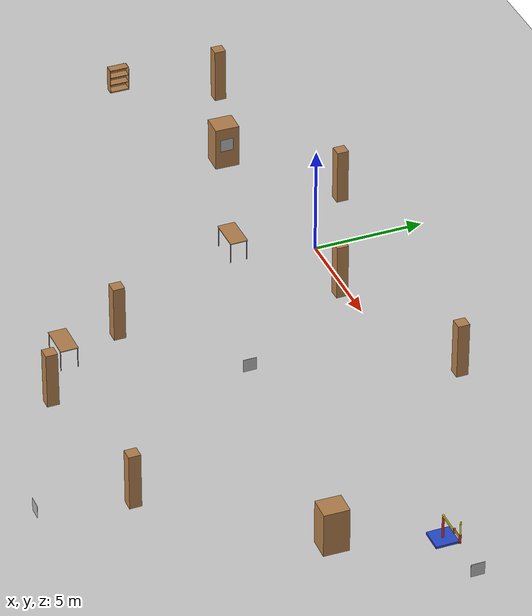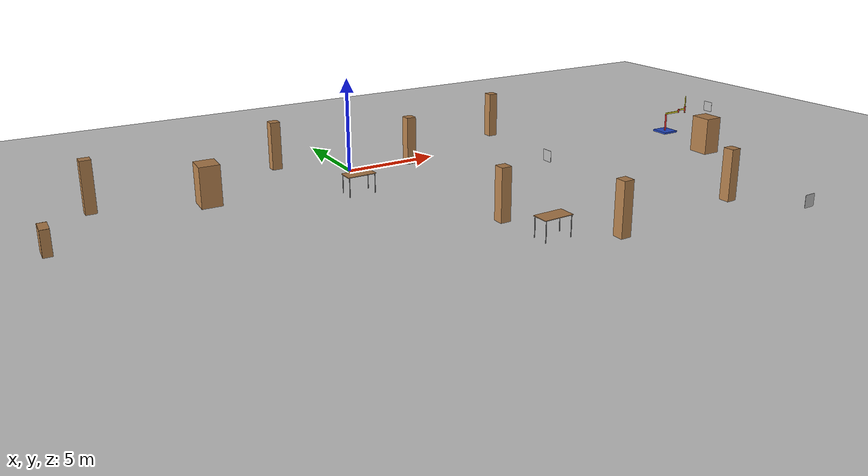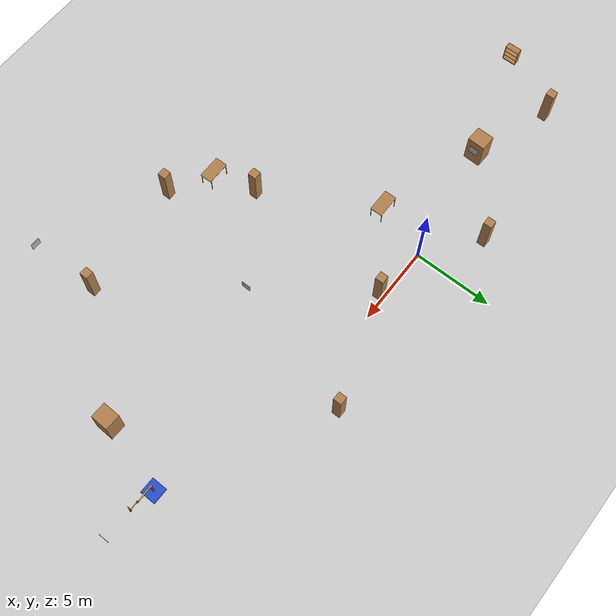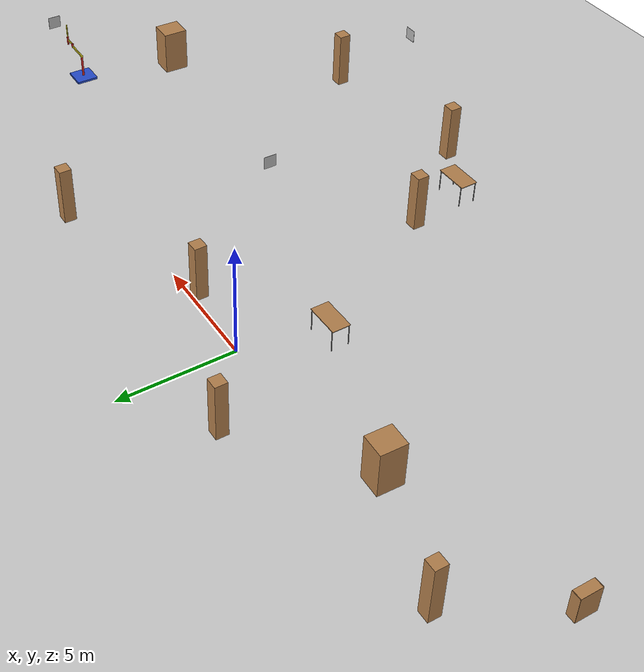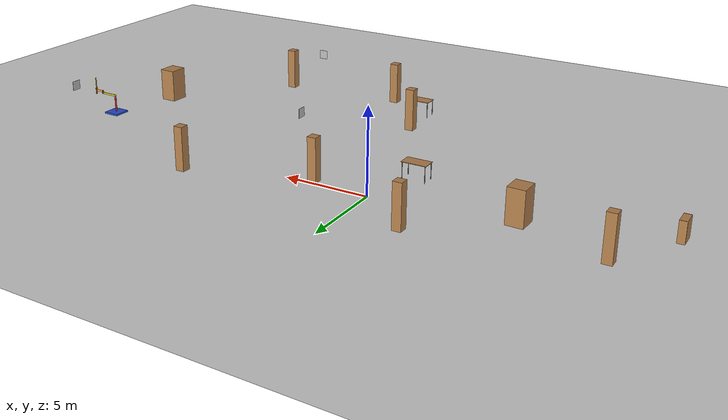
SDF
<sdf version="1.7">
 <world name="default">
  <model name="ground_plane">
   <static>1</static>
   <link name="link">
    <collision name="collision">
     <geometry><plane><normal>0 0 1</normal><size>25 25</size></plane></geometry>
     <surface><friction><ode><mu>100</mu><mu2>50</mu2></ode></friction></surface>
    </collision>
    <visual name="visual">
     <cast_shadows>0</cast_shadows>
     <geometry><plane><normal>0 0 1</normal><size>25 25</size></plane></geometry>
     <material>
      <script><uri>file://media/materials/scripts/gazebo.material</uri><name>Gazebo/Grey</name></script>
     </material>
    </visual>
   </link>
   <link name="startflag">
    <pose>0 0 0.115 0 -0 0</pose>
    <inertial>
     <mass>0.39</mass>
     <inertia><ixx>0.00058</ixx><ixy>0</ixy><ixz>0</ixz><iyy>0.00058</iyy><iyz>0</iyz><izz>0.00019</izz></inertia>
    </inertial>
    <collision name="collision"><geometry><box><size>1 1 0.01</size></box></geometry></collision>
    <visual name="visual">
     <geometry><box><size>1 1 0.01</size></box></geometry>
     <material>
      <script>
       <uri>model://apriltag/materials/scripts</uri>
       <uri>model://apriltag/materials/textures</uri>
       <name>startflag/Diffuse</name>
      </script>
     </material>
    </visual>
   </link>
  </model>
  <model name="unit_box">
   <pose>-7.8066 -1.17549 1.01795 -4e-06 -2e-06 -0.028962</pose>
   <link name="link">
    <inertial>
     <mass>1</mass>
     <inertia>
      <ixx>0.166667</ixx>
      <ixy>0</ixy>
      <ixz>0</ixz>
      <iyy>0.166667</iyy>
      <iyz>0</iyz>
      <izz>0.166667</izz>
     </inertia>
    </inertial>
    <collision name="collision"><geometry><box><size>1 1.11313 2.03591</size></box></geometry></collision>
    <visual name="visual">
     <geometry><box><size>1 1.11313 2.03591</size></box></geometry>
     <material>
      <script><uri>file://media/materials/scripts/gazebo.material</uri><name>Gazebo/Wood</name></script>
     </material>
    </visual>
   </link>
   <static>0</static>
  </model>
  <model name="table">
   <static>0</static>
   <link name="link">
    <collision name="surface">
     <pose>0 0 1 0 -0 0</pose>
     <geometry><box><size>1.5 0.8 0.03</size></box></geometry>
     <surface><friction><ode><mu>0.6</mu><mu2>0.6</mu2></ode></friction></surface>
    </collision>
    <visual name="visual1">
     <pose>0 0 1 0 -0 0</pose>
     <geometry><box><size>1.5 0.8 0.03</size></box></geometry>
     <material>
      <script><uri>file://media/materials/scripts/gazebo.material</uri><name>Gazebo/Wood</name></script>
     </material>
    </visual>
    <collision name="front_left_leg">
     <pose>0.68 0.38 0.5 0 -0 0</pose>
     <geometry><cylinder><radius>0.02</radius><length>1</length></cylinder></geometry>
    </collision>
    <visual name="front_left_leg">
     <pose>0.68 0.38 0.5 0 -0 0</pose>
     <geometry><cylinder><radius>0.02</radius><length>1</length></cylinder></geometry>
     <material>
      <script><uri>file://media/materials/scripts/gazebo.material</uri><name>Gazebo/Grey</name></script>
     </material>
    </visual>
    <collision name="front_right_leg">
     <pose>0.68 -0.38 0.5 0 -0 0</pose>
     <geometry><cylinder><radius>0.02</radius><length>1</length></cylinder></geometry>
    </collision>
    <visual name="front_right_leg">
     <pose>0.68 -0.38 0.5 0 -0 0</pose>
     <geometry><cylinder><radius>0.02</radius><length>1</length></cylinder></geometry>
     <material>
      <script><uri>file://media/materials/scripts/gazebo.material</uri><name>Gazebo/Grey</name></script>
     </material>
    </visual>
    <collision name="back_right_leg">
     <pose>-0.68 -0.38 0.5 0 -0 0</pose>
     <geometry><cylinder><radius>0.02</radius><length>1</length></cylinder></geometry>
    </collision>
    <visual name="back_right_leg">
     <pose>-0.68 -0.38 0.5 0 -0 0</pose>
     <geometry><cylinder><radius>0.02</radius><length>1</length></cylinder></geometry>
     <material>
      <script><uri>file://media/materials/scripts/gazebo.material</uri><name>Gazebo/Grey</name></script>
     </material>
    </visual>
    <collision name="back_left_leg">
     <pose>-0.68 0.38 0.5 0 -0 0</pose>
     <geometry><cylinder><radius>0.02</radius><length>1</length></cylinder></geometry>
    </collision>
    <visual name="back_left_leg">
     <pose>-0.68 0.38 0.5 0 -0 0</pose>
     <geometry><cylinder><radius>0.02</radius><length>1</length></cylinder></geometry>
     <material>
      <script><uri>file://media/materials/scripts/gazebo.material</uri><name>Gazebo/Grey</name></script>
     </material>
    </visual>
    <inertial>
     <inertia><ixx>1</ixx><ixy>0</ixy><ixz>0</ixz><iyy>1</iyy><iyz>0</iyz><izz>1</izz></inertia>
     <mass>1</mass>
    </inertial>
   </link>
   <pose>-1.08828 -3.4353 -4e-06 2e-06 4e-06 0.010207</pose>
  </model>
  <model name="unit_box_0">
   <pose>-3.15496 2.50233 1.29125 1e-06 -0 0.000158</pose>
   <link name="link">
    <inertial>
     <mass>1</mass>
     <inertia>
      <ixx>0.166667</ixx>
      <ixy>0</ixy>
      <ixz>0</ixz>
      <iyy>0.166667</iyy>
      <iyz>0</iyz>
      <izz>0.166667</izz>
     </inertia>
    </inertial>
    <collision name="collision"><geometry><box><size>0.52404 0.528613 2.5825</size></box></geometry></collision>
    <visual name="visual">
     <geometry><box><size>0.52404 0.528613 2.5825</size></box></geometry>
     <material>
      <script><uri>file://media/materials/scripts/gazebo.material</uri><name>Gazebo/Wood</name></script>
     </material>
    </visual>
   </link>
   <static>0</static>
  </model>
  <model name="unit_box_0_clone">
   <pose>3.461 -0.330305 1.29125 -1e-06 -1e-06 0.014472</pose>
   <link name="link">
    <inertial>
     <mass>1</mass>
     <inertia>
      <ixx>0.166667</ixx>
      <ixy>0</ixy>
      <ixz>0</ixz>
      <iyy>0.166667</iyy>
      <iyz>0</iyz>
      <izz>0.166667</izz>
     </inertia>
    </inertial>
    <collision name="collision"><geometry><box><size>0.52404 0.528614 2.5825</size></box></geometry></collision>
    <visual name="visual">
     <geometry><box><size>0.52404 0.528614 2.5825</size></box></geometry>
     <material>
      <script><uri>file://media/materials/scripts/gazebo.material</uri><name>Gazebo/Wood</name></script>
     </material>
    </visual>
   </link>
   <static>0</static>
  </model>
  <model name="unit_box_0_clone_2">
   <pose>-12.7876 0.55243 1.29125 -1e-06 -1e-06 -0.001522</pose>
   <link name="link">
    <inertial>
     <mass>1</mass>
     <inertia>
      <ixx>0.166667</ixx>
      <ixy>0</ixy>
      <ixz>0</ixz>
      <iyy>0.166667</iyy>
      <iyz>0</iyz>
      <izz>0.166667</izz>
     </inertia>
    </inertial>
    <collision name="collision"><geometry><box><size>0.52404 0.528614 2.5825</size></box></geometry></collision>
    <visual name="visual">
     <geometry><box><size>0.52404 0.528614 2.5825</size></box></geometry>
     <material>
      <script><uri>file://media/materials/scripts/gazebo.material</uri><name>Gazebo/Wood</name></script>
     </material>
    </visual>
   </link>
   <static>0</static>
  </model>
  <model name="unit_box_0_clone_3">
   <pose>10.4918 2.09211 1.29125 1e-06 1e-06 -0.00089</pose>
   <link name="link">
    <inertial>
     <mass>1</mass>
     <inertia>
      <ixx>0.166667</ixx>
      <ixy>0</ixy>
      <ixz>0</ixz>
      <iyy>0.166667</iyy>
      <iyz>0</iyz>
      <izz>0.166667</izz>
     </inertia>
    </inertial>
    <collision name="collision"><geometry><box><size>0.52404 0.528614 2.5825</size></box></geometry></collision>
    <visual name="visual">
     <geometry><box><size>0.52404 0.528614 2.5825</size></box></geometry>
     <material>
      <script><uri>file://media/materials/scripts/gazebo.material</uri><name>Gazebo/Wood</name></script>
     </material>
    </visual>
   </link>
   <static>0</static>
  </model>
  <model name="static_apriltag_0">
   <link name="link">
    <pose>0 0 0 0 1.57 0</pose>
    <inertial>
     <mass>0.39</mass>
     <inertia><ixx>0.00058</ixx><ixy>0</ixy><ixz>0</ixz><iyy>0.00058</iyy><iyz>0</iyz><izz>0.00019</izz></inertia>
    </inertial>
    <collision name="collision"><geometry><box><size>0.6 0.6 0.01</size></box></geometry></collision>
    <visual name="visual">
     <geometry><box><size>0.6 0.6 0.01</size></box></geometry>
     <material>
      <script>
       <uri>model://apriltag/materials/scripts</uri>
       <uri>model://apriltag/materials/textures</uri>
       <name>apriltag/Diffuse0</name>
      </script>
     </material>
    </visual>
    <gravity>0</gravity>
   </link>
   <pose>8.19379 -6.38226 1.2 0 -0 0</pose>
   <static>0</static>
   <pose>1.90787 0.108649 0 0 -0 0</pose>
  </model>
  <model name="static_apriltag_2">
   <link name="link">
    <pose>0 0 0 0 1.57 0</pose>
    <inertial>
     <mass>0.39</mass>
     <inertia><ixx>0.00058</ixx><ixy>0</ixy><ixz>0</ixz><iyy>0.00058</iyy><iyz>0</iyz><izz>0.00019</izz></inertia>
    </inertial>
    <collision name="collision"><geometry><box><size>0.6 0.6 0.01</size></box></geometry></collision>
    <visual name="visual">
     <geometry><box><size>0.6 0.6 0.01</size></box></geometry>
     <material>
      <script>
       <uri>model://apriltag/materials/scripts</uri>
       <uri>model://apriltag/materials/textures</uri>
       <name>apriltag/Diffuse2</name>
      </script>
     </material>
    </visual>
    <gravity>0</gravity>
   </link>
   <pose>23.686 -3.18053 1.2 0 -0 0</pose>
   <static>0</static>
   <pose>0.80811 0.829943 0 0 -0 0</pose>
  </model>
  <model name="static_apriltag_5">
   <link name="link">
    <pose>0 0 0 -1.57 1.57 -0</pose>
    <inertial>
     <mass>0.39</mass>
     <inertia><ixx>0.00058</ixx><ixy>0</ixy><ixz>0</ixz><iyy>0.00058</iyy><iyz>0</iyz><izz>0.00019</izz></inertia>
    </inertial>
    <collision name="collision"><geometry><box><size>0.6 0.6 0.01</size></box></geometry></collision>
    <visual name="visual">
     <geometry><box><size>0.6 0.6 0.01</size></box></geometry>
     <material>
      <script>
       <uri>model://apriltag/materials/scripts</uri>
       <uri>model://apriltag/materials/textures</uri>
       <name>apriltag/Diffuse5</name>
      </script>
     </material>
    </visual>
    <gravity>0</gravity>
   </link>
   <pose>13.7196 -17.7351 1.2 0 -0 0</pose>
   <static>0</static>
   <pose>5.04082 3.71574 0 0 -0 0</pose>
  </model>
  <model name="static_apriltag_7">
   <link name="link">
    <pose>0 0 0 0 1.57 0</pose>
    <inertial>
     <mass>0.39</mass>
     <inertia><ixx>0.00058</ixx><ixy>0</ixy><ixz>0</ixz><iyy>0.00058</iyy><iyz>0</iyz><izz>0.00019</izz></inertia>
    </inertial>
    <collision name="collision"><geometry><box><size>0.6 0.6 0.01</size></box></geometry></collision>
    <visual name="visual">
     <geometry><box><size>0.6 0.6 0.01</size></box></geometry>
     <material>
      <script>
       <uri>model://apriltag/materials/scripts</uri>
       <uri>model://apriltag/materials/textures</uri>
       <name>apriltag/Diffuse7</name>
      </script>
     </material>
    </visual>
    <gravity>0</gravity>
   </link>
   <pose>-7.28565 -1.22371 1.2 0 -0 0</pose>
   <static>0</static>
   <pose>3.12393 4.47604 0 0 -0 0</pose>
  </model>
  <model name="bookshelf">
   <static>1</static>
   <link name="link">
    <inertial><mass>1</mass></inertial>
    <collision name="back">
     <pose>0 0.005 0.6 0 -0 0</pose>
     <geometry><box><size>0.9 0.01 1.2</size></box></geometry>
    </collision>
    <visual name="visual1">
     <pose>0 0.005 0.6 0 -0 0</pose>
     <geometry><box><size>0.9 0.01 1.2</size></box></geometry>
     <material>
      <script><uri>file://media/materials/scripts/gazebo.material</uri><name>Gazebo/Wood</name></script>
     </material>
    </visual>
    <collision name="left_side">
     <pose>0.45 -0.195 0.6 0 -0 0</pose>
     <geometry><box><size>0.02 0.4 1.2</size></box></geometry>
    </collision>
    <visual name="visual2">
     <pose>0.45 -0.195 0.6 0 -0 0</pose>
     <geometry><box><size>0.02 0.4 1.2</size></box></geometry>
     <material>
      <script><uri>file://media/materials/scripts/gazebo.material</uri><name>Gazebo/Wood</name></script>
     </material>
    </visual>
    <collision name="right_side">
     <pose>-0.45 -0.195 0.6 0 -0 0</pose>
     <geometry><box><size>0.02 0.4 1.2</size></box></geometry>
    </collision>
    <visual name="visual3">
     <pose>-0.45 -0.195 0.6 0 -0 0</pose>
     <geometry><box><size>0.02 0.4 1.2</size></box></geometry>
     <material>
      <script><uri>file://media/materials/scripts/gazebo.material</uri><name>Gazebo/Wood</name></script>
     </material>
    </visual>
    <collision name="bottom">
     <pose>0 -0.195 0.03 0 -0 0</pose>
     <geometry><box><size>0.88 0.4 0.06</size></box></geometry>
    </collision>
    <visual name="visual4">
     <pose>0 -0.195 0.03 0 -0 0</pose>
     <geometry><box><size>0.88 0.4 0.06</size></box></geometry>
     <material>
      <script><uri>file://media/materials/scripts/gazebo.material</uri><name>Gazebo/Wood</name></script>
     </material>
    </visual>
    <collision name="top">
     <pose>0 -0.195 1.19 0 -0 0</pose>
     <geometry><box><size>0.88 0.4 0.02</size></box></geometry>
    </collision>
    <visual name="visual5">
     <pose>0 -0.195 1.19 0 -0 0</pose>
     <geometry><box><size>0.88 0.4 0.02</size></box></geometry>
     <material>
      <script><uri>file://media/materials/scripts/gazebo.material</uri><name>Gazebo/Wood</name></script>
     </material>
    </visual>
    <collision name="low_shelf">
     <pose>0 -0.195 0.43 0 -0 0</pose>
     <geometry><box><size>0.88 0.4 0.02</size></box></geometry>
    </collision>
    <visual name="visual6">
     <pose>0 -0.195 0.43 0 -0 0</pose>
     <geometry><box><size>0.88 0.4 0.02</size></box></geometry>
     <material>
      <script><uri>file://media/materials/scripts/gazebo.material</uri><name>Gazebo/Wood</name></script>
     </material>
    </visual>
    <collision name="high_shelf">
     <pose>0 -0.195 0.8 0 -0 0</pose>
     <geometry><box><size>0.88 0.4 0.02</size></box></geometry>
    </collision>
    <visual name="visual7">
     <pose>0 -0.195 0.8 0 -0 0</pose>
     <geometry><box><size>0.88 0.4 0.02</size></box></geometry>
     <material>
      <script><uri>file://media/materials/scripts/gazebo.material</uri><name>Gazebo/Wood</name></script>
     </material>
    </visual>
   </link>
   <pose>-15.3069 -3.46598 0 0 -0 1.57</pose>
  </model>
  <model name="unit_box_clone_clone">
   <pose>18.9255 -7.25794 1.01795 1e-06 1e-06 -0.028953</pose>
   <link name="link">
    <inertial>
     <mass>1</mass>
     <inertia>
      <ixx>0.166667</ixx>
      <ixy>0</ixy>
      <ixz>0</ixz>
      <iyy>0.166667</iyy>
      <iyz>0</iyz>
      <izz>0.166667</izz>
     </inertia>
    </inertial>
    <collision name="collision"><geometry><box><size>1 1.11313 2.03591</size></box></geometry></collision>
    <visual name="visual">
     <geometry><box><size>1 1.11313 2.03591</size></box></geometry>
     <material>
      <script><uri>file://media/materials/scripts/gazebo.material</uri><name>Gazebo/Wood</name></script>
     </material>
    </visual>
   </link>
   <static>0</static>
  </model>
  <model name="unit_box_0_clone_0_clone">
   <pose>2.73742 -10.1714 1.29125 -1e-06 -1e-06 0.001785</pose>
   <link name="link">
    <inertial>
     <mass>1</mass>
     <inertia>
      <ixx>0.166667</ixx>
      <ixy>0</ixy>
      <ixz>0</ixz>
      <iyy>0.166667</iyy>
      <iyz>0</iyz>
      <izz>0.166667</izz>
     </inertia>
    </inertial>
    <collision name="collision"><geometry><box><size>0.52404 0.528614 2.5825</size></box></geometry></collision>
    <visual name="visual">
     <geometry><box><size>0.52404 0.528614 2.5825</size></box></geometry>
     <material>
      <script><uri>file://media/materials/scripts/gazebo.material</uri><name>Gazebo/Wood</name></script>
     </material>
    </visual>
   </link>
   <static>0</static>
  </model>
  <model name="unit_box_0_clone_0_clone_0">
   <pose>6.02235 -14.3271 1.29125 -1e-06 -1e-06 3.4e-05</pose>
   <link name="link">
    <inertial>
     <mass>1</mass>
     <inertia>
      <ixx>0.166667</ixx>
      <ixy>0</ixy>
      <ixz>0</ixz>
      <iyy>0.166667</iyy>
      <iyz>0</iyz>
      <izz>0.166667</izz>
     </inertia>
    </inertial>
    <collision name="collision"><geometry><box><size>0.52404 0.528614 2.5825</size></box></geometry></collision>
    <visual name="visual">
     <geometry><box><size>0.52404 0.528614 2.5825</size></box></geometry>
     <material>
      <script><uri>file://media/materials/scripts/gazebo.material</uri><name>Gazebo/Wood</name></script>
     </material>
    </visual>
   </link>
   <static>0</static>
  </model>
  <model name="unit_box_0_clone_0_clone_1">
   <pose>13.5266 -13.549 1.29125 1e-06 1e-06 0.000707</pose>
   <link name="link">
    <inertial>
     <mass>1</mass>
     <inertia>
      <ixx>0.166667</ixx>
      <ixy>0</ixy>
      <ixz>0</ixz>
      <iyy>0.166667</iyy>
      <iyz>0</iyz>
      <izz>0.166667</izz>
     </inertia>
    </inertial>
    <collision name="collision"><geometry><box><size>0.52404 0.528614 2.5825</size></box></geometry></collision>
    <visual name="visual">
     <geometry><box><size>0.52404 0.528614 2.5825</size></box></geometry>
     <material>
      <script><uri>file://media/materials/scripts/gazebo.material</uri><name>Gazebo/Wood</name></script>
     </material>
    </visual>
   </link>
   <static>0</static>
  </model>
  <model name="simple_arm_clone_0">
   <link name="arm_base">
    <inertial>
     <pose>0 0 0.00099 0 -0 0</pose>
     <inertia><ixx>1.11</ixx><ixy>0</ixy><ixz>0</ixz><iyy>100.11</iyy><iyz>0</iyz><izz>1.01</izz></inertia>
     <mass>101</mass>
    </inertial>
    <collision name="arm_base_geom">
     <pose>0 0 0.05 0 -0 0</pose>
     <geometry><box><size>1 1 0.1</size></box></geometry>
    </collision>
    <visual name="arm_base_geom_visual">
     <pose>0 0 0.05 0 -0 0</pose>
     <geometry><box><size>1 1 0.1</size></box></geometry>
     <material>
      <script><uri>file://media/materials/scripts/gazebo.material</uri><name>Gazebo/Blue</name></script>
     </material>
    </visual>
    <collision name="arm_base_geom_arm_trunk">
     <pose>0 0 0.6 0 -0 0</pose>
     <geometry><cylinder><radius>0.05</radius><length>1</length></cylinder></geometry>
    </collision>
    <visual name="arm_base_geom_arm_trunk_visual">
     <pose>0 0 0.6 0 -0 0</pose>
     <geometry><cylinder><radius>0.05</radius><length>1</length></cylinder></geometry>
     <material>
      <script><uri>file://media/materials/scripts/gazebo.material</uri><name>Gazebo/Red</name></script>
     </material>
    </visual>
   </link>
   <link name="arm_shoulder_pan">
    <pose>0 0 1.1 0 -0 0</pose>
    <inertial>
     <pose>0.045455 0 0 0 -0 0</pose>
     <inertia><ixx>0.011</ixx><ixy>0</ixy><ixz>0</ixz><iyy>0.0225</iyy><iyz>0</iyz><izz>0.0135</izz></inertia>
     <mass>1.1</mass>
    </inertial>
    <collision name="arm_shoulder_pan_geom">
     <pose>0 0 0.05 0 -0 0</pose>
     <geometry><cylinder><radius>0.05</radius><length>0.1</length></cylinder></geometry>
    </collision>
    <visual name="arm_shoulder_pan_geom_visual">
     <pose>0 0 0.05 0 -0 0</pose>
     <geometry><cylinder><radius>0.05</radius><length>0.1</length></cylinder></geometry>
     <material>
      <script><uri>file://media/materials/scripts/gazebo.material</uri><name>Gazebo/Yellow</name></script>
     </material>
    </visual>
    <collision name="arm_shoulder_pan_geom_arm_shoulder">
     <pose>0.55 0 0.05 0 -0 0</pose>
     <geometry><box><size>1 0.05 0.1</size></box></geometry>
    </collision>
    <visual name="arm_shoulder_pan_geom_arm_shoulder_visual">
     <pose>0.55 0 0.05 0 -0 0</pose>
     <geometry><box><size>1 0.05 0.1</size></box></geometry>
     <material>
      <script><uri>file://media/materials/scripts/gazebo.material</uri><name>Gazebo/Yellow</name></script>
     </material>
    </visual>
   </link>
   <link name="arm_elbow_pan">
    <pose>1.05 0 1.1 0 -0 0</pose>
    <inertial>
     <pose>0.0875 0 0.083333 0 -0 0</pose>
     <inertia>
      <ixx>0.031</ixx>
      <ixy>0</ixy>
      <ixz>0.005</ixz>
      <iyy>0.07275</iyy>
      <iyz>0</iyz>
      <izz>0.04475</izz>
     </inertia>
     <mass>1.2</mass>
    </inertial>
    <collision name="arm_elbow_pan_geom">
     <pose>0 0 0.1 0 -0 0</pose>
     <geometry><cylinder><radius>0.05</radius><length>0.2</length></cylinder></geometry>
    </collision>
    <visual name="arm_elbow_pan_geom_visual">
     <pose>0 0 0.1 0 -0 0</pose>
     <geometry><cylinder><radius>0.05</radius><length>0.2</length></cylinder></geometry>
     <material>
      <script><uri>file://media/materials/scripts/gazebo.material</uri><name>Gazebo/Red</name></script>
     </material>
    </visual>
    <collision name="arm_elbow_pan_geom_arm_elbow">
     <pose>0.3 0 0.15 0 -0 0</pose>
     <geometry><box><size>0.5 0.03 0.1</size></box></geometry>
    </collision>
    <visual name="arm_elbow_pan_geom_arm_elbow_visual">
     <pose>0.3 0 0.15 0 -0 0</pose>
     <geometry><box><size>0.5 0.03 0.1</size></box></geometry>
     <material>
      <script><uri>file://media/materials/scripts/gazebo.material</uri><name>Gazebo/Yellow</name></script>
     </material>
    </visual>
    <collision name="arm_elbow_pan_geom_arm_wrist">
     <pose>0.55 0 0.15 0 -0 0</pose>
     <geometry><cylinder><radius>0.05</radius><length>0.3</length></cylinder></geometry>
    </collision>
    <visual name="arm_elbow_pan_geom_arm_wrist_visual">
     <pose>0.55 0 0.15 0 -0 0</pose>
     <geometry><cylinder><radius>0.05</radius><length>0.3</length></cylinder></geometry>
     <material>
      <script><uri>file://media/materials/scripts/gazebo.material</uri><name>Gazebo/Red</name></script>
     </material>
    </visual>
   </link>
   <link name="arm_wrist_lift">
    <pose>1.6 0 1.05 0 -0 0</pose>
    <inertial>
     <inertia><ixx>0.01</ixx><ixy>0</ixy><ixz>0</ixz><iyy>0.01</iyy><iyz>0</iyz><izz>0.001</izz></inertia>
     <mass>0.1</mass>
    </inertial>
    <collision name="arm_wrist_lift_geom">
     <pose>0 0 0.5 0 -0 0</pose>
     <geometry><cylinder><radius>0.03</radius><length>1</length></cylinder></geometry>
    </collision>
    <visual name="arm_wrist_lift_geom_visual">
     <pose>0 0 0.5 0 -0 0</pose>
     <geometry><cylinder><radius>0.03</radius><length>1</length></cylinder></geometry>
     <material>
      <script><uri>file://media/materials/scripts/gazebo.material</uri><name>Gazebo/Yellow</name></script>
     </material>
    </visual>
   </link>
   <link name="arm_wrist_roll">
    <pose>1.6 0 1 0 -0 0</pose>
    <inertial>
     <inertia><ixx>0.01</ixx><ixy>0</ixy><ixz>0</ixz><iyy>0.01</iyy><iyz>0</iyz><izz>0.001</izz></inertia>
     <mass>0.1</mass>
    </inertial>
    <collision name="arm_wrist_roll_geom">
     <pose>0 0 0.025 0 -0 0</pose>
     <geometry><cylinder><radius>0.05</radius><length>0.05</length></cylinder></geometry>
    </collision>
    <visual name="arm_wrist_roll_geom_visual">
     <pose>0 0 0.025 0 -0 0</pose>
     <geometry><cylinder><radius>0.05</radius><length>0.05</length></cylinder></geometry>
     <material>
      <script><uri>file://media/materials/scripts/gazebo.material</uri><name>Gazebo/Red</name></script>
     </material>
    </visual>
   </link>
   <joint name="arm_shoulder_pan_joint" type="revolute">
    <parent>arm_base</parent>
    <child>arm_shoulder_pan</child>
    <axis>
     <dynamics>
      <damping>1</damping>
      <friction>0</friction>
      <spring_reference>0</spring_reference>
      <spring_stiffness>0</spring_stiffness>
     </dynamics>
     <xyz expressed_in="__model__">0 0 1</xyz>
     <limit><lower>-1e+16</lower><upper>1e+16</upper></limit>
    </axis>
   </joint>
   <joint name="arm_elbow_pan_joint" type="revolute">
    <parent>arm_shoulder_pan</parent>
    <child>arm_elbow_pan</child>
    <axis>
     <dynamics>
      <damping>1</damping>
      <friction>0</friction>
      <spring_reference>0</spring_reference>
      <spring_stiffness>0</spring_stiffness>
     </dynamics>
     <xyz expressed_in="__model__">0 0 1</xyz>
     <limit><lower>-1e+16</lower><upper>1e+16</upper></limit>
    </axis>
   </joint>
   <joint name="arm_wrist_lift_joint" type="prismatic">
    <parent>arm_elbow_pan</parent>
    <child>arm_wrist_lift</child>
    <axis>
     <dynamics>
      <damping>1</damping>
      <friction>0</friction>
      <spring_reference>0</spring_reference>
      <spring_stiffness>0</spring_stiffness>
     </dynamics>
     <limit><lower>-0.8</lower><upper>0.1</upper></limit>
     <xyz expressed_in="__model__">0 0 1</xyz>
    </axis>
   </joint>
   <joint name="arm_wrist_roll_joint" type="revolute">
    <parent>arm_wrist_lift</parent>
    <child>arm_wrist_roll</child>
    <axis>
     <dynamics>
      <damping>1</damping>
      <friction>0</friction>
      <spring_reference>0</spring_reference>
      <spring_stiffness>0</spring_stiffness>
     </dynamics>
     <limit><lower>-2.99999</lower><upper>2.99999</upper></limit>
     <xyz expressed_in="__model__">0 0 1</xyz>
    </axis>
   </joint>
   <pose>20.1537 -3.03968 -0 0 0 -0.007137</pose>
  </model>
  <model name="table_clone_0">
   <static>0</static>
   <link name="link">
    <collision name="surface">
     <pose>0 0 1 0 -0 0</pose>
     <geometry><box><size>1.5 0.8 0.03</size></box></geometry>
     <surface><friction><ode><mu>0.6</mu><mu2>0.6</mu2></ode></friction></surface>
    </collision>
    <visual name="visual1">
     <pose>0 0 1 0 -0 0</pose>
     <geometry><box><size>1.5 0.8 0.03</size></box></geometry>
     <material>
      <script><uri>file://media/materials/scripts/gazebo.material</uri><name>Gazebo/Wood</name></script>
     </material>
    </visual>
    <collision name="front_left_leg">
     <pose>0.68 0.38 0.5 0 -0 0</pose>
     <geometry><cylinder><radius>0.02</radius><length>1</length></cylinder></geometry>
    </collision>
    <visual name="front_left_leg">
     <pose>0.68 0.38 0.5 0 -0 0</pose>
     <geometry><cylinder><radius>0.02</radius><length>1</length></cylinder></geometry>
     <material>
      <script><uri>file://media/materials/scripts/gazebo.material</uri><name>Gazebo/Grey</name></script>
     </material>
    </visual>
    <collision name="front_right_leg">
     <pose>0.68 -0.38 0.5 0 -0 0</pose>
     <geometry><cylinder><radius>0.02</radius><length>1</length></cylinder></geometry>
    </collision>
    <visual name="front_right_leg">
     <pose>0.68 -0.38 0.5 0 -0 0</pose>
     <geometry><cylinder><radius>0.02</radius><length>1</length></cylinder></geometry>
     <material>
      <script><uri>file://media/materials/scripts/gazebo.material</uri><name>Gazebo/Grey</name></script>
     </material>
    </visual>
    <collision name="back_right_leg">
     <pose>-0.68 -0.38 0.5 0 -0 0</pose>
     <geometry><cylinder><radius>0.02</radius><length>1</length></cylinder></geometry>
    </collision>
    <visual name="back_right_leg">
     <pose>-0.68 -0.38 0.5 0 -0 0</pose>
     <geometry><cylinder><radius>0.02</radius><length>1</length></cylinder></geometry>
     <material>
      <script><uri>file://media/materials/scripts/gazebo.material</uri><name>Gazebo/Grey</name></script>
     </material>
    </visual>
    <collision name="back_left_leg">
     <pose>-0.68 0.38 0.5 0 -0 0</pose>
     <geometry><cylinder><radius>0.02</radius><length>1</length></cylinder></geometry>
    </collision>
    <visual name="back_left_leg">
     <pose>-0.68 0.38 0.5 0 -0 0</pose>
     <geometry><cylinder><radius>0.02</radius><length>1</length></cylinder></geometry>
     <material>
      <script><uri>file://media/materials/scripts/gazebo.material</uri><name>Gazebo/Grey</name></script>
     </material>
    </visual>
    <inertial>
     <inertia><ixx>1</ixx><ixy>0</ixy><ixz>0</ixz><iyy>1</iyy><iyz>0</iyz><izz>1</izz></inertia>
     <mass>1</mass>
    </inertial>
   </link>
   <pose>3.45441 -12.8503 -0 0 -0 0.0092</pose>
  </model>
 </world>
</sdf>
